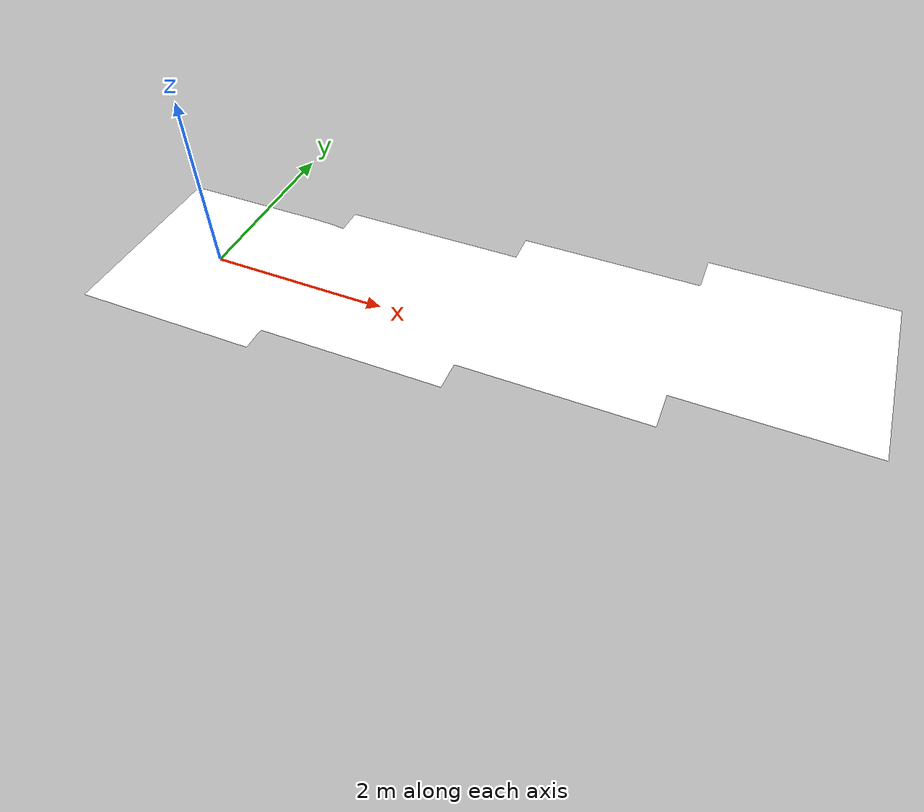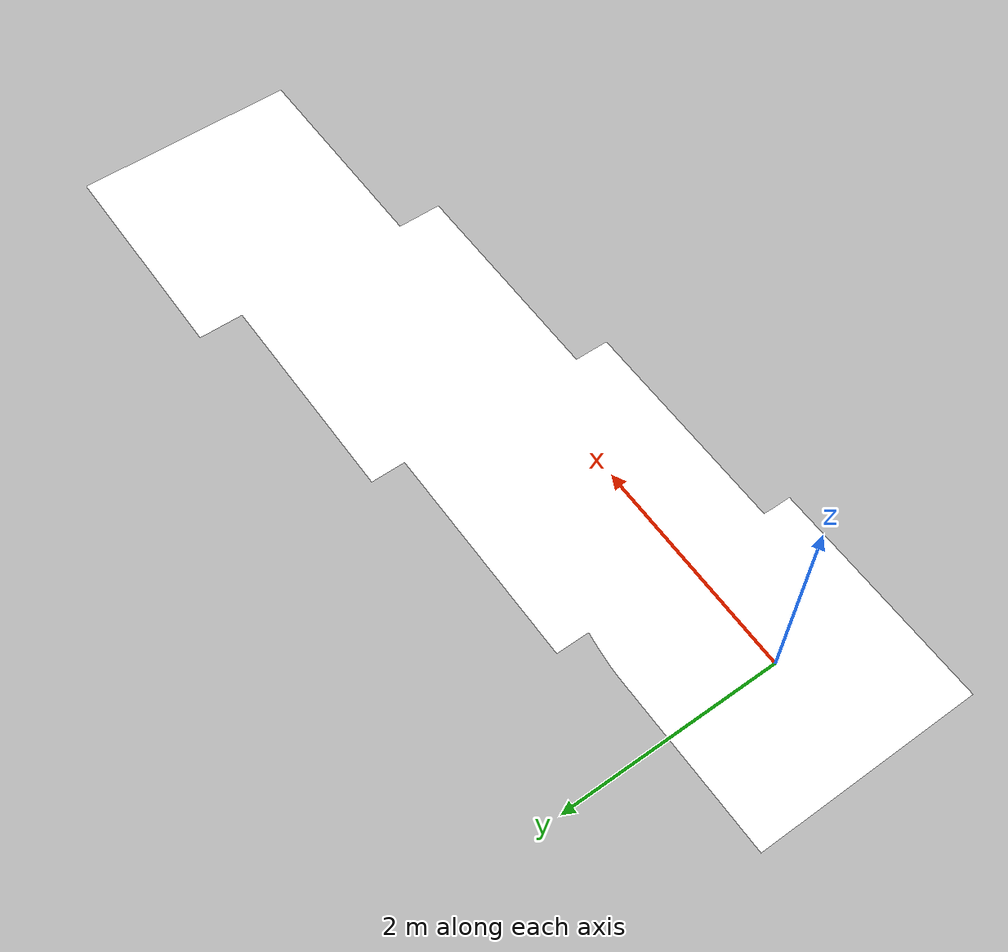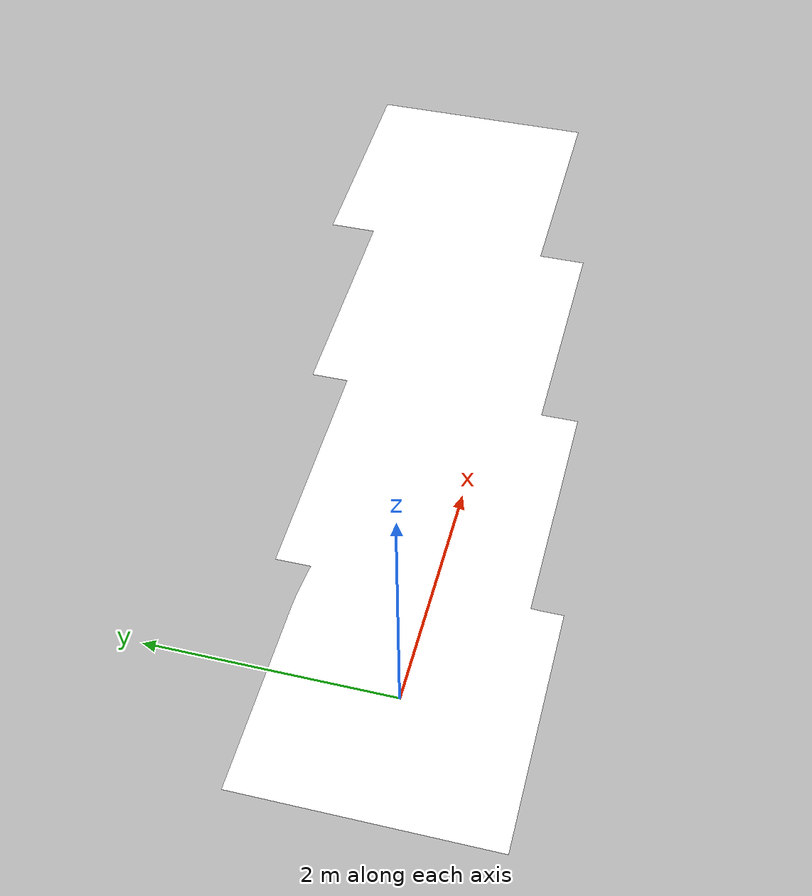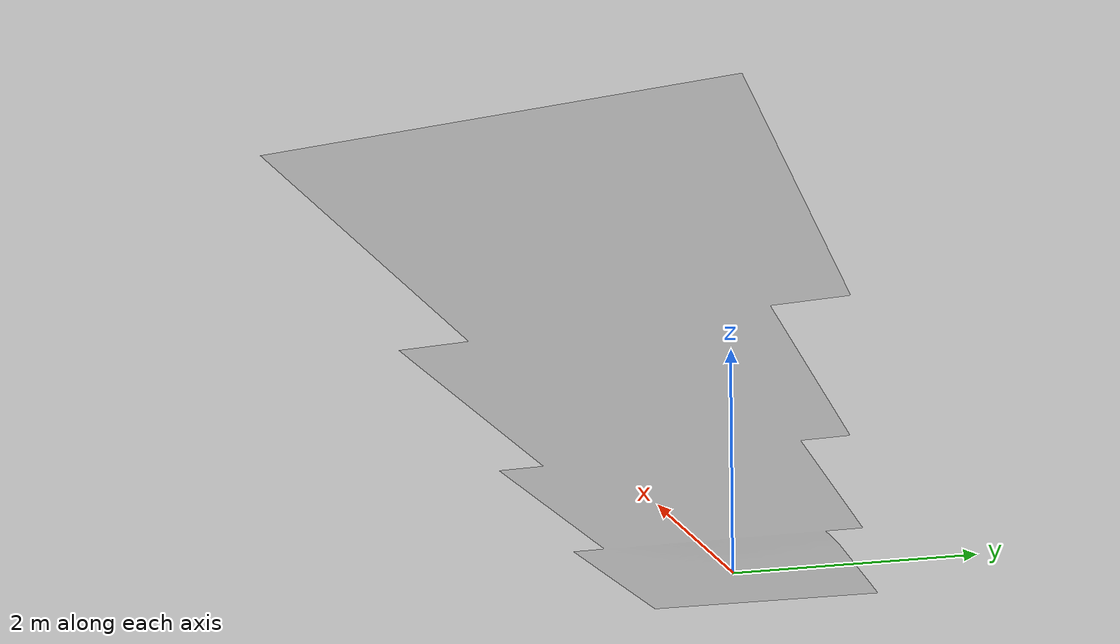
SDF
<?xml version="1.0" ?>
<sdf version="1.6">
  <model name="road_1">
    <pose>0 0 0 0 0 0</pose>
    <static>true</static>
    <link name="body">
      <visual name="visual">
        <geometry>
          <mesh><uri>./media/road_1.dae</uri></mesh>
        </geometry>
        <material>
          <ambient>1 1 1 1</ambient>
          <diffuse>1 1 1 1</diffuse>
          <specular>0.1 0.1 0.1 1</specular>
          <pbr>
            <metal>
              <albedo_map>./media/Textures/Road.png</albedo_map>
            </metal>
          </pbr>
        </material>
      </visual>
      <collision name="collision">
        <geometry>
          <mesh><uri>./media/road_1.dae</uri></mesh>
        </geometry>
      </collision>
    </link>
  </model>
</sdf>
